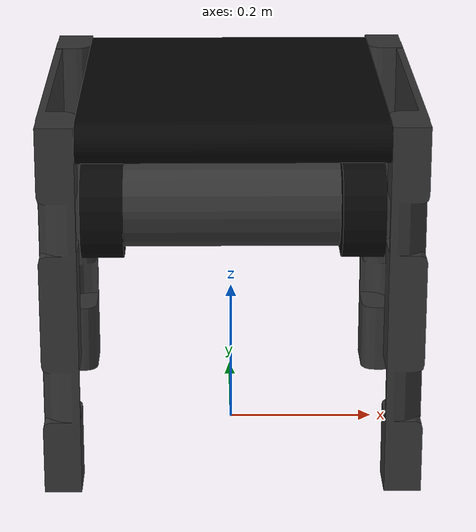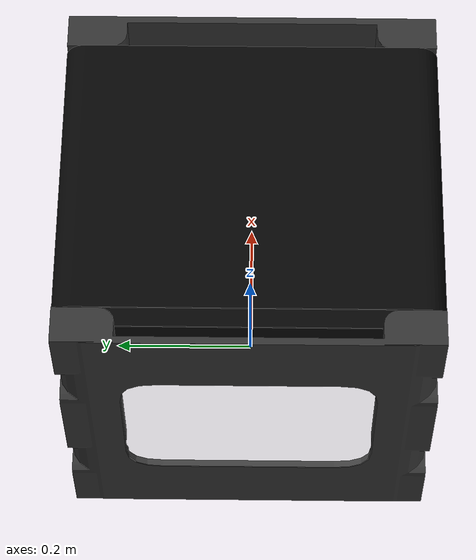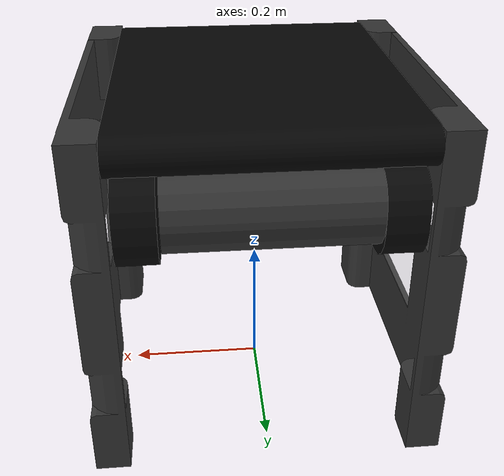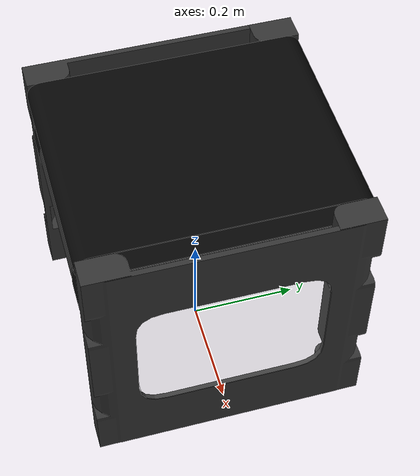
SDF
<?xml version="1.0" ?>
<sdf version="1.6">
    <model name="conveyor_block_rmf">
        <static>true</static>
        <link name="conveyor_block_link">
                        <visual name="visual_0">
                <geometry><mesh><uri>model://conveyor_block_rmf/meshes/conveyor_block_rmf_0.obj</uri></mesh></geometry>
                <material><ambient>0.200 0.200 0.200 1.000</ambient><diffuse>0.200 0.200 0.200 1.000</diffuse><specular>0.2 0.2 0.2 1</specular></material>
            </visual>
            <visual name="visual_1">
                <geometry><mesh><uri>model://conveyor_block_rmf/meshes/conveyor_block_rmf_1.obj</uri></mesh></geometry>
                <material><ambient>0.800 0.800 0.800 0.051</ambient><diffuse>0.800 0.800 0.800 0.051</diffuse><specular>0.2 0.2 0.2 1</specular></material>
            </visual>
            <visual name="visual_2">
                <geometry><mesh><uri>model://conveyor_block_rmf/meshes/conveyor_block_rmf_2.obj</uri></mesh></geometry>
                <material><ambient>0.031 0.031 0.031 1.000</ambient><diffuse>0.031 0.031 0.031 1.000</diffuse><specular>0.2 0.2 0.2 1</specular></material>
            </visual>
            <visual name="visual_3">
                <geometry><mesh><uri>model://conveyor_block_rmf/meshes/conveyor_block_rmf_3.obj</uri></mesh></geometry>
                <material><ambient>0.020 0.020 0.020 1.000</ambient><diffuse>0.020 0.020 0.020 1.000</diffuse><specular>0.2 0.2 0.2 1</specular></material>
            </visual>
            <collision name="conveyor_block_collider_box">
                <pose>0.0 0.0 0.251262 0.0 0.0 0.0</pose>
                <geometry>
                    <box>
                        <size>0.501994 0.505 0.504526</size>
                    </box>
                </geometry>
            </collision>
        </link>
    </model>
</sdf>
